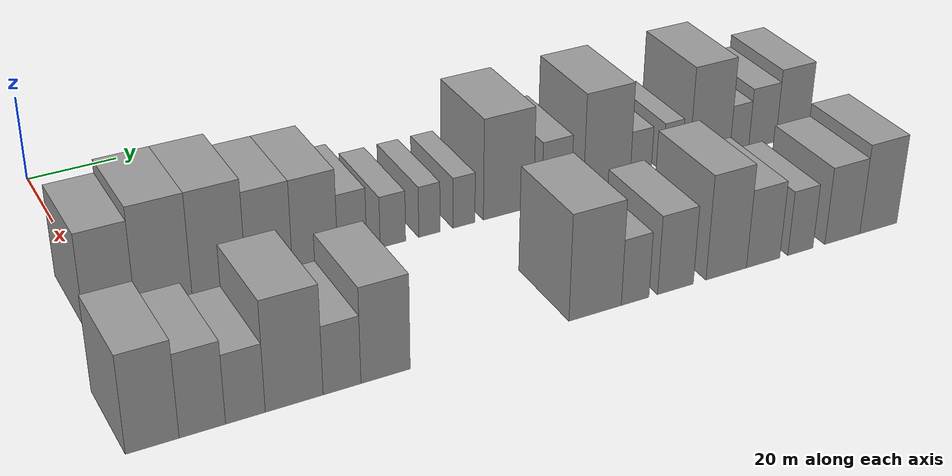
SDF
<sdf version="1.6">
 <world name="default">
  <model name="building_30">
   <static>1</static>
   <pose>50.0000 -0.1729 0 0.000000 0.000000 0.000000</pose>
   <link name="link">
    <pose>0 0 10.50 0 0 0</pose>
    <collision name="collision"><geometry><box><size>20.0000 10.2520 21.0000</size></box></geometry></collision>
    <visual name="visual">
     <cast_shadows>0</cast_shadows>
     <geometry><box><size>20.0000 10.2520 21.0000</size></box></geometry>
     <material>
      <script>
       <uri>model://grey_wall/materials/scripts</uri>
       <uri>model://grey_wall/materials/textures</uri>
       <name>vrc/grey_wall</name>
      </script>
     </material>
    </visual>
   </link>
  </model>
  <model name="building_31">
   <static>1</static>
   <pose>50.0000 10.7029 0 0.000000 0.000000 0.000000</pose>
   <link name="link">
    <pose>0 0 12.00 0 0 0</pose>
    <collision name="collision"><geometry><box><size>20.0000 11.4996 24.0000</size></box></geometry></collision>
    <visual name="visual">
     <cast_shadows>0</cast_shadows>
     <geometry><box><size>20.0000 11.4996 24.0000</size></box></geometry>
     <material>
      <script>
       <uri>model://grey_wall/materials/scripts</uri>
       <uri>model://grey_wall/materials/textures</uri>
       <name>vrc/grey_wall</name>
      </script>
     </material>
    </visual>
   </link>
  </model>
  <model name="building_32">
   <static>1</static>
   <pose>50.0000 22.0867 0 0.000000 0.000000 0.000000</pose>
   <link name="link">
    <pose>0 0 12.00 0 0 0</pose>
    <collision name="collision"><geometry><box><size>20.0000 11.2679 24.0000</size></box></geometry></collision>
    <visual name="visual">
     <cast_shadows>0</cast_shadows>
     <geometry><box><size>20.0000 11.2679 24.0000</size></box></geometry>
     <material>
      <script>
       <uri>model://grey_wall/materials/scripts</uri>
       <uri>model://grey_wall/materials/textures</uri>
       <name>vrc/grey_wall</name>
      </script>
     </material>
    </visual>
   </link>
  </model>
  <model name="building_33">
   <static>1</static>
   <pose>50.0000 32.6490 0 0.000000 0.000000 0.000000</pose>
   <link name="link">
    <pose>0 0 10.50 0 0 0</pose>
    <collision name="collision"><geometry><box><size>20.0000 9.8569 21.0000</size></box></geometry></collision>
    <visual name="visual">
     <cast_shadows>0</cast_shadows>
     <geometry><box><size>20.0000 9.8569 21.0000</size></box></geometry>
     <material>
      <script>
       <uri>model://grey_wall/materials/scripts</uri>
       <uri>model://grey_wall/materials/textures</uri>
       <name>vrc/grey_wall</name>
      </script>
     </material>
    </visual>
   </link>
  </model>
  <model name="building_34">
   <static>1</static>
   <pose>50.0000 42.4987 0 0.000000 0.000000 0.000000</pose>
   <link name="link">
    <pose>0 0 10.50 0 0 0</pose>
    <collision name="collision"><geometry><box><size>20.0000 9.8425 21.0000</size></box></geometry></collision>
    <visual name="visual">
     <cast_shadows>0</cast_shadows>
     <geometry><box><size>20.0000 9.8425 21.0000</size></box></geometry>
     <material>
      <script>
       <uri>model://grey_wall/materials/scripts</uri>
       <uri>model://grey_wall/materials/textures</uri>
       <name>vrc/grey_wall</name>
      </script>
     </material>
    </visual>
   </link>
  </model>
  <model name="building_35">
   <static>1</static>
   <pose>50.0000 50.6380 0 0.000000 0.000000 0.000000</pose>
   <link name="link">
    <pose>0 0 7.50 0 0 0</pose>
    <collision name="collision"><geometry><box><size>20.0000 6.4363 15.0000</size></box></geometry></collision>
    <visual name="visual">
     <cast_shadows>0</cast_shadows>
     <geometry><box><size>20.0000 6.4363 15.0000</size></box></geometry>
     <material>
      <script>
       <uri>model://grey_wall/materials/scripts</uri>
       <uri>model://grey_wall/materials/textures</uri>
       <name>vrc/grey_wall</name>
      </script>
     </material>
    </visual>
   </link>
  </model>
  <model name="building_36">
   <static>1</static>
   <pose>50.0000 59.7436 0 0.000000 0.000000 0.000000</pose>
   <link name="link">
    <pose>0 0 6.00 0 0 0</pose>
    <collision name="collision"><geometry><box><size>20.0000 5.7747 12.0000</size></box></geometry></collision>
    <visual name="visual">
     <cast_shadows>0</cast_shadows>
     <geometry><box><size>20.0000 5.7747 12.0000</size></box></geometry>
     <material>
      <script>
       <uri>model://grey_wall/materials/scripts</uri>
       <uri>model://grey_wall/materials/textures</uri>
       <name>vrc/grey_wall</name>
      </script>
     </material>
    </visual>
   </link>
  </model>
  <model name="building_37">
   <static>1</static>
   <pose>50.0000 68.0749 0 0.000000 0.000000 0.000000</pose>
   <link name="link">
    <pose>0 0 6.00 0 0 0</pose>
    <collision name="collision"><geometry><box><size>20.0000 4.8880 12.0000</size></box></geometry></collision>
    <visual name="visual">
     <cast_shadows>0</cast_shadows>
     <geometry><box><size>20.0000 4.8880 12.0000</size></box></geometry>
     <material>
      <script>
       <uri>model://grey_wall/materials/scripts</uri>
       <uri>model://grey_wall/materials/textures</uri>
       <name>vrc/grey_wall</name>
      </script>
     </material>
    </visual>
   </link>
  </model>
  <model name="building_38">
   <static>1</static>
   <pose>50.0000 76.0985 0 0.000000 0.000000 0.000000</pose>
   <link name="link">
    <pose>0 0 6.00 0 0 0</pose>
    <collision name="collision"><geometry><box><size>20.0000 5.1592 12.0000</size></box></geometry></collision>
    <visual name="visual">
     <cast_shadows>0</cast_shadows>
     <geometry><box><size>20.0000 5.1592 12.0000</size></box></geometry>
     <material>
      <script>
       <uri>model://grey_wall/materials/scripts</uri>
       <uri>model://grey_wall/materials/textures</uri>
       <name>vrc/grey_wall</name>
      </script>
     </material>
    </visual>
   </link>
  </model>
  <model name="building_39">
   <static>1</static>
   <pose>50.0000 86.6668 0 0.000000 0.000000 0.000000</pose>
   <link name="link">
    <pose>0 0 12.00 0 0 0</pose>
    <collision name="collision"><geometry><box><size>20.0000 11.9774 24.0000</size></box></geometry></collision>
    <visual name="visual">
     <cast_shadows>0</cast_shadows>
     <geometry><box><size>20.0000 11.9774 24.0000</size></box></geometry>
     <material>
      <script>
       <uri>model://grey_wall/materials/scripts</uri>
       <uri>model://grey_wall/materials/textures</uri>
       <name>vrc/grey_wall</name>
      </script>
     </material>
    </visual>
   </link>
  </model>
  <model name="building_40">
   <static>1</static>
   <pose>50.0000 98.2690 0 0.000000 0.000000 0.000000</pose>
   <link name="link">
    <pose>0 0 7.50 0 0 0</pose>
    <collision name="collision"><geometry><box><size>20.0000 7.2270 15.0000</size></box></geometry></collision>
    <visual name="visual">
     <cast_shadows>0</cast_shadows>
     <geometry><box><size>20.0000 7.2270 15.0000</size></box></geometry>
     <material>
      <script>
       <uri>model://grey_wall/materials/scripts</uri>
       <uri>model://grey_wall/materials/textures</uri>
       <name>vrc/grey_wall</name>
      </script>
     </material>
    </visual>
   </link>
  </model>
  <model name="building_41">
   <static>1</static>
   <pose>50.0000 110.7591 0 0.000000 0.000000 0.000000</pose>
   <link name="link">
    <pose>0 0 12.00 0 0 0</pose>
    <collision name="collision"><geometry><box><size>20.0000 11.7533 24.0000</size></box></geometry></collision>
    <visual name="visual">
     <cast_shadows>0</cast_shadows>
     <geometry><box><size>20.0000 11.7533 24.0000</size></box></geometry>
     <material>
      <script>
       <uri>model://grey_wall/materials/scripts</uri>
       <uri>model://grey_wall/materials/textures</uri>
       <name>vrc/grey_wall</name>
      </script>
     </material>
    </visual>
   </link>
  </model>
  <model name="building_42">
   <static>1</static>
   <pose>50.0000 119.3263 0 0.000000 0.000000 0.000000</pose>
   <link name="link">
    <pose>0 0 6.00 0 0 0</pose>
    <collision name="collision"><geometry><box><size>20.0000 5.3810 12.0000</size></box></geometry></collision>
    <visual name="visual">
     <cast_shadows>0</cast_shadows>
     <geometry><box><size>20.0000 5.3810 12.0000</size></box></geometry>
     <material>
      <script>
       <uri>model://grey_wall/materials/scripts</uri>
       <uri>model://grey_wall/materials/textures</uri>
       <name>vrc/grey_wall</name>
      </script>
     </material>
    </visual>
   </link>
  </model>
  <model name="building_43">
   <static>1</static>
   <pose>50.0000 127.4678 0 0.000000 0.000000 0.000000</pose>
   <link name="link">
    <pose>0 0 6.00 0 0 0</pose>
    <collision name="collision"><geometry><box><size>20.0000 4.9020 12.0000</size></box></geometry></collision>
    <visual name="visual">
     <cast_shadows>0</cast_shadows>
     <geometry><box><size>20.0000 4.9020 12.0000</size></box></geometry>
     <material>
      <script>
       <uri>model://grey_wall/materials/scripts</uri>
       <uri>model://grey_wall/materials/textures</uri>
       <name>vrc/grey_wall</name>
      </script>
     </material>
    </visual>
   </link>
  </model>
  <model name="building_44">
   <static>1</static>
   <pose>50.0000 137.3209 0 0.000000 0.000000 0.000000</pose>
   <link name="link">
    <pose>0 0 12.00 0 0 0</pose>
    <collision name="collision"><geometry><box><size>20.0000 10.8042 24.0000</size></box></geometry></collision>
    <visual name="visual">
     <cast_shadows>0</cast_shadows>
     <geometry><box><size>20.0000 10.8042 24.0000</size></box></geometry>
     <material>
      <script>
       <uri>model://grey_wall/materials/scripts</uri>
       <uri>model://grey_wall/materials/textures</uri>
       <name>vrc/grey_wall</name>
      </script>
     </material>
    </visual>
   </link>
  </model>
  <model name="building_45">
   <static>1</static>
   <pose>50.0000 145.2696 0 0.000000 0.000000 0.000000</pose>
   <link name="link">
    <pose>0 0 6.00 0 0 0</pose>
    <collision name="collision"><geometry><box><size>20.0000 5.0934 12.0000</size></box></geometry></collision>
    <visual name="visual">
     <cast_shadows>0</cast_shadows>
     <geometry><box><size>20.0000 5.0934 12.0000</size></box></geometry>
     <material>
      <script>
       <uri>model://grey_wall/materials/scripts</uri>
       <uri>model://grey_wall/materials/textures</uri>
       <name>vrc/grey_wall</name>
      </script>
     </material>
    </visual>
   </link>
  </model>
  <model name="building_46">
   <static>1</static>
   <pose>50.0000 151.5181 0 0.000000 0.000000 0.000000</pose>
   <link name="link">
    <pose>0 0 7.50 0 0 0</pose>
    <collision name="collision"><geometry><box><size>20.0000 7.4036 15.0000</size></box></geometry></collision>
    <visual name="visual">
     <cast_shadows>0</cast_shadows>
     <geometry><box><size>20.0000 7.4036 15.0000</size></box></geometry>
     <material>
      <script>
       <uri>model://grey_wall/materials/scripts</uri>
       <uri>model://grey_wall/materials/textures</uri>
       <name>vrc/grey_wall</name>
      </script>
     </material>
    </visual>
   </link>
  </model>
  <model name="building_47">
   <static>1</static>
   <pose>50.0000 159.7162 0 0.000000 0.000000 0.000000</pose>
   <link name="link">
    <pose>0 0 9.00 0 0 0</pose>
    <collision name="collision"><geometry><box><size>20.0000 8.9927 18.0000</size></box></geometry></collision>
    <visual name="visual">
     <cast_shadows>0</cast_shadows>
     <geometry><box><size>20.0000 8.9927 18.0000</size></box></geometry>
     <material>
      <script>
       <uri>model://grey_wall/materials/scripts</uri>
       <uri>model://grey_wall/materials/textures</uri>
       <name>vrc/grey_wall</name>
      </script>
     </material>
    </visual>
   </link>
  </model>
  <model name="building_99">
   <static>1</static>
   <pose>90.0000 -5.1140 0 0.000000 0.000000 0.000000</pose>
   <link name="link">
    <pose>0 0 10.50 0 0 0</pose>
    <collision name="collision"><geometry><box><size>20.0000 9.7519 21.0000</size></box></geometry></collision>
    <visual name="visual">
     <cast_shadows>0</cast_shadows>
     <geometry><box><size>20.0000 9.7519 21.0000</size></box></geometry>
     <material>
      <script>
       <uri>model://grey_wall/materials/scripts</uri>
       <uri>model://grey_wall/materials/textures</uri>
       <name>vrc/grey_wall</name>
      </script>
     </material>
    </visual>
   </link>
  </model>
  <model name="building_100">
   <static>1</static>
   <pose>90.0000 4.0656 0 0.000000 0.000000 0.000000</pose>
   <link name="link">
    <pose>0 0 9.00 0 0 0</pose>
    <collision name="collision"><geometry><box><size>20.0000 8.6072 18.0000</size></box></geometry></collision>
    <visual name="visual">
     <cast_shadows>0</cast_shadows>
     <geometry><box><size>20.0000 8.6072 18.0000</size></box></geometry>
     <material>
      <script>
       <uri>model://grey_wall/materials/scripts</uri>
       <uri>model://grey_wall/materials/textures</uri>
       <name>vrc/grey_wall</name>
      </script>
     </material>
    </visual>
   </link>
  </model>
  <model name="building_101">
   <static>1</static>
   <pose>90.0000 12.1184 0 0.000000 0.000000 0.000000</pose>
   <link name="link">
    <pose>0 0 7.50 0 0 0</pose>
    <collision name="collision"><geometry><box><size>20.0000 7.4985 15.0000</size></box></geometry></collision>
    <visual name="visual">
     <cast_shadows>0</cast_shadows>
     <geometry><box><size>20.0000 7.4985 15.0000</size></box></geometry>
     <material>
      <script>
       <uri>model://grey_wall/materials/scripts</uri>
       <uri>model://grey_wall/materials/textures</uri>
       <name>vrc/grey_wall</name>
      </script>
     </material>
    </visual>
   </link>
  </model>
  <model name="building_102">
   <static>1</static>
   <pose>90.0000 21.4566 0 0.000000 0.000000 0.000000</pose>
   <link name="link">
    <pose>0 0 12.00 0 0 0</pose>
    <collision name="collision"><geometry><box><size>20.0000 11.1780 24.0000</size></box></geometry></collision>
    <visual name="visual">
     <cast_shadows>0</cast_shadows>
     <geometry><box><size>20.0000 11.1780 24.0000</size></box></geometry>
     <material>
      <script>
       <uri>model://grey_wall/materials/scripts</uri>
       <uri>model://grey_wall/materials/textures</uri>
       <name>vrc/grey_wall</name>
      </script>
     </material>
    </visual>
   </link>
  </model>
  <model name="building_103">
   <static>1</static>
   <pose>90.0000 30.7810 0 0.000000 0.000000 0.000000</pose>
   <link name="link">
    <pose>0 0 7.50 0 0 0</pose>
    <collision name="collision"><geometry><box><size>20.0000 7.4707 15.0000</size></box></geometry></collision>
    <visual name="visual">
     <cast_shadows>0</cast_shadows>
     <geometry><box><size>20.0000 7.4707 15.0000</size></box></geometry>
     <material>
      <script>
       <uri>model://grey_wall/materials/scripts</uri>
       <uri>model://grey_wall/materials/textures</uri>
       <name>vrc/grey_wall</name>
      </script>
     </material>
    </visual>
   </link>
  </model>
  <model name="building_104">
   <static>1</static>
   <pose>90.0000 39.4867 0 0.000000 0.000000 0.000000</pose>
   <link name="link">
    <pose>0 0 10.50 0 0 0</pose>
    <collision name="collision"><geometry><box><size>20.0000 9.9407 21.0000</size></box></geometry></collision>
    <visual name="visual">
     <cast_shadows>0</cast_shadows>
     <geometry><box><size>20.0000 9.9407 21.0000</size></box></geometry>
     <material>
      <script>
       <uri>model://grey_wall/materials/scripts</uri>
       <uri>model://grey_wall/materials/textures</uri>
       <name>vrc/grey_wall</name>
      </script>
     </material>
    </visual>
   </link>
  </model>
  <model name="building_105">
   <static>1</static>
   <pose>90.0000 84.0573 0 0.000000 0.000000 0.000000</pose>
   <link name="link">
    <pose>0 0 12.00 0 0 0</pose>
    <collision name="collision"><geometry><box><size>20.0000 11.7335 24.0000</size></box></geometry></collision>
    <visual name="visual">
     <cast_shadows>0</cast_shadows>
     <geometry><box><size>20.0000 11.7335 24.0000</size></box></geometry>
     <material>
      <script>
       <uri>model://grey_wall/materials/scripts</uri>
       <uri>model://grey_wall/materials/textures</uri>
       <name>vrc/grey_wall</name>
      </script>
     </material>
    </visual>
   </link>
  </model>
  <model name="building_106">
   <static>1</static>
   <pose>90.0000 93.0801 0 0.000000 0.000000 0.000000</pose>
   <link name="link">
    <pose>0 0 7.50 0 0 0</pose>
    <collision name="collision"><geometry><box><size>20.0000 6.3120 15.0000</size></box></geometry></collision>
    <visual name="visual">
     <cast_shadows>0</cast_shadows>
     <geometry><box><size>20.0000 6.3120 15.0000</size></box></geometry>
     <material>
      <script>
       <uri>model://grey_wall/materials/scripts</uri>
       <uri>model://grey_wall/materials/textures</uri>
       <name>vrc/grey_wall</name>
      </script>
     </material>
    </visual>
   </link>
  </model>
  <model name="building_107">
   <static>1</static>
   <pose>90.0000 102.4024 0 0.000000 0.000000 0.000000</pose>
   <link name="link">
    <pose>0 0 9.00 0 0 0</pose>
    <collision name="collision"><geometry><box><size>20.0000 8.3327 18.0000</size></box></geometry></collision>
    <visual name="visual">
     <cast_shadows>0</cast_shadows>
     <geometry><box><size>20.0000 8.3327 18.0000</size></box></geometry>
     <material>
      <script>
       <uri>model://grey_wall/materials/scripts</uri>
       <uri>model://grey_wall/materials/textures</uri>
       <name>vrc/grey_wall</name>
      </script>
     </material>
    </visual>
   </link>
  </model>
  <model name="building_108">
   <static>1</static>
   <pose>90.0000 114.4295 0 0.000000 0.000000 0.000000</pose>
   <link name="link">
    <pose>0 0 12.00 0 0 0</pose>
    <collision name="collision"><geometry><box><size>20.0000 9.7215 24.0000</size></box></geometry></collision>
    <visual name="visual">
     <cast_shadows>0</cast_shadows>
     <geometry><box><size>20.0000 9.7215 24.0000</size></box></geometry>
     <material>
      <script>
       <uri>model://grey_wall/materials/scripts</uri>
       <uri>model://grey_wall/materials/textures</uri>
       <name>vrc/grey_wall</name>
      </script>
     </material>
    </visual>
   </link>
  </model>
  <model name="building_109">
   <static>1</static>
   <pose>90.0000 123.3558 0 0.000000 0.000000 0.000000</pose>
   <link name="link">
    <pose>0 0 9.00 0 0 0</pose>
    <collision name="collision"><geometry><box><size>20.0000 8.1311 18.0000</size></box></geometry></collision>
    <visual name="visual">
     <cast_shadows>0</cast_shadows>
     <geometry><box><size>20.0000 8.1311 18.0000</size></box></geometry>
     <material>
      <script>
       <uri>model://grey_wall/materials/scripts</uri>
       <uri>model://grey_wall/materials/textures</uri>
       <name>vrc/grey_wall</name>
      </script>
     </material>
    </visual>
   </link>
  </model>
  <model name="building_110">
   <static>1</static>
   <pose>90.0000 132.5464 0 0.000000 0.000000 0.000000</pose>
   <link name="link">
    <pose>0 0 7.50 0 0 0</pose>
    <collision name="collision"><geometry><box><size>20.0000 6.2500 15.0000</size></box></geometry></collision>
    <visual name="visual">
     <cast_shadows>0</cast_shadows>
     <geometry><box><size>20.0000 6.2500 15.0000</size></box></geometry>
     <material>
      <script>
       <uri>model://grey_wall/materials/scripts</uri>
       <uri>model://grey_wall/materials/textures</uri>
       <name>vrc/grey_wall</name>
      </script>
     </material>
    </visual>
   </link>
  </model>
  <model name="building_111">
   <static>1</static>
   <pose>90.0000 143.1398 0 0.000000 0.000000 0.000000</pose>
   <link name="link">
    <pose>0 0 9.00 0 0 0</pose>
    <collision name="collision"><geometry><box><size>20.0000 8.9369 18.0000</size></box></geometry></collision>
    <visual name="visual">
     <cast_shadows>0</cast_shadows>
     <geometry><box><size>20.0000 8.9369 18.0000</size></box></geometry>
     <material>
      <script>
       <uri>model://grey_wall/materials/scripts</uri>
       <uri>model://grey_wall/materials/textures</uri>
       <name>vrc/grey_wall</name>
      </script>
     </material>
    </visual>
   </link>
  </model>
  <model name="building_112">
   <static>1</static>
   <pose>90.0000 152.4070 0 0.000000 0.000000 0.000000</pose>
   <link name="link">
    <pose>0 0 10.50 0 0 0</pose>
    <collision name="collision"><geometry><box><size>20.0000 9.5974 21.0000</size></box></geometry></collision>
    <visual name="visual">
     <cast_shadows>0</cast_shadows>
     <geometry><box><size>20.0000 9.5974 21.0000</size></box></geometry>
     <material>
      <script>
       <uri>model://grey_wall/materials/scripts</uri>
       <uri>model://grey_wall/materials/textures</uri>
       <name>vrc/grey_wall</name>
      </script>
     </material>
    </visual>
   </link>
  </model>
 </world>
</sdf>
